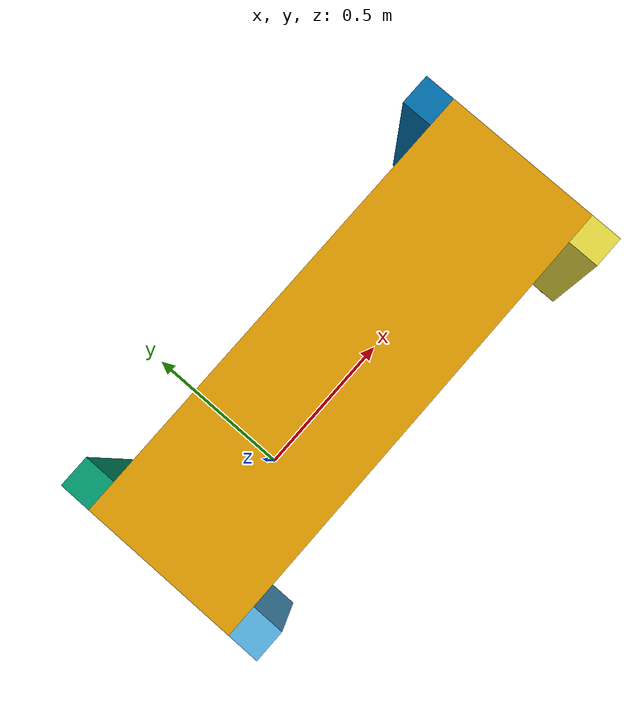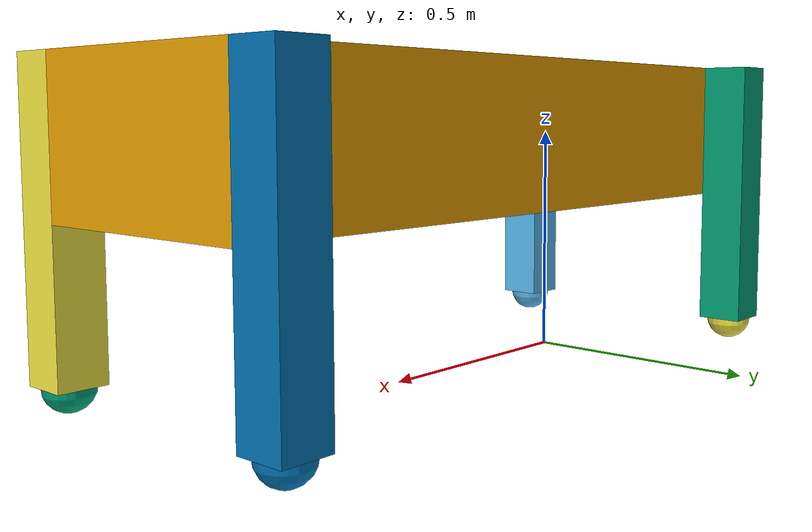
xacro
<?xml version="1.0" ?>

<robot name="pig_dog" xmlns:xacro="http://www.ros.org/wiki/xacro">

  <!-- Import all Gazebo-customization elements, including Gazebo colors -->
  <xacro:include filename="$(find pig_dog_description)/urdf/pig_dog.gazebo" />

  <joint name="body_lf_joint" type="continuous">
    <parent link="body"/>
    <child link="left_front_leg"/>
    <origin rpy="0 0 0" xyz="-0.35 -0.3   0.65"/>
    <axis xyz="0 1 0"/>
    <dynamics damping="0.7"/>
  </joint>

  <joint name="body_rf_joint" type="continuous">
    <parent link="body"/>
    <child link="right_front_leg"/>
    <origin rpy="0 0 0" xyz="-0.35  0.3   0.65"/>
    <axis xyz="0 -1  0"/>
    <dynamics damping="0.7"/>
  </joint>

  <joint name="body_lb_joint" type="continuous">
    <parent link="body"/>
    <child link="left_back_leg"/>
    <origin rpy="0 0 0" xyz="1.05 -0.3   0.65"/>
    <axis xyz="0 1 0"/>
    <dynamics damping="0.7"/>
  </joint>

  <joint name="body_rb_joint" type="continuous">
    <parent link="body"/>
    <child link="right_back_leg"/>
    <origin rpy="0 0 0" xyz="1.05 0.3  0.65"/>
    <axis xyz="0 -1  0"/>
    <dynamics damping="0.7"/>
  </joint>

  <joint name="lf_leg_foot_joint" type="prismatic">
    <parent link="left_front_leg"/>
    <child link="left_front_foot"/>
    <origin rpy="0 0 0" xyz="0   0  -0.6"/>
    <axis xyz="0  0 -1"/>
    <limit effort="1e10" lower="0" upper="0.5" velocity="10"/>
  </joint>

  <joint name="rf_leg_foot_joint" type="prismatic">
    <parent link="right_front_leg"/>
    <child link="right_front_foot"/>
    <origin rpy="0 0 0" xyz="0   0  -0.6"/>
    <axis xyz="0  0 -1"/>
    <limit effort="1e10" lower="0" upper="0.5" velocity="10"/>
  </joint>

  <joint name="lb_leg_foot_joint" type="prismatic">
    <parent link="left_back_leg"/>
    <child link="left_back_foot"/>
    <origin rpy="0 0 0" xyz="0   0  -0.6"/>
    <axis xyz="0  0 -1"/>
    <limit effort="1e10" lower="0" upper="0.5" velocity="10"/>
  </joint>

  <joint name="rb_leg_foot_joint" type="prismatic">
    <parent link="right_back_leg"/>
    <child link="right_back_foot"/>
    <origin rpy="0 0 0" xyz="0   0  -0.6"/>
    <axis xyz="0  0 -1"/>
    <limit effort="1e10" lower="0" upper="0.5" velocity="10"/>
  </joint>

  <joint name="lf_foot_shoe_joint" type="fixed">
    <parent link="left_front_foot"/>
    <child link="left_front_shoe"/>
    <origin rpy="0 0 0" xyz="0   0  0"/>
    <axis xyz="0 0 1"/>
  </joint>

  <joint name="rf_foot_shoe_joint" type="fixed">
    <parent link="right_front_foot"/>
    <child link="right_front_shoe"/>
    <origin rpy="0 0 0" xyz="0   0  0"/>
    <axis xyz="0 0 1"/>
  </joint>

  <joint name="lb_foot_shoe_joint" type="fixed">
    <parent link="left_back_foot"/>
    <child link="left_back_shoe"/>
    <origin rpy="0 0 0" xyz="0  0  0"/>
    <axis xyz="0 0 1"/>
  </joint>

  <joint name="rb_foot_shoe_joint" type="fixed">
    <parent link="right_back_foot"/>
    <child link="right_back_shoe"/>
    <origin rpy="0 0 0" xyz="0   0  0"/>
    <axis xyz="0 0 1"/>
  </joint>

  <link name="body">
    <inertial>
      <mass value="5"/>
      <origin rpy="0 0 0" xyz="0 0 0"/>
      <inertia ixx="0.166667" ixy="0" ixz="0" iyy="0.166667" iyz="0" izz="0.166667"/>
    </inertial>
    <collision name="pig_dog__collision">
      <origin rpy="0 0 0" xyz="0.35 0   0.5"/>
      <geometry>
        <box size="1.5 0.5 0.3"/>
      </geometry>
    </collision>
    <visual name="pig_dog__visual">
      <origin rpy="0 0 0" xyz="0.35 0   0.5"/>
      <geometry>
        <box size="1.5 0.5 0.3"/>
      </geometry>
    </visual>
  </link>

  <link name="left_front_leg">
    <inertial>
      <mass value="0.5"/>
      <origin rpy="0 0 0" xyz="0 0 0"/>
      <inertia ixx="0.166667" ixy="0" ixz="0" iyy="0.166667" iyz="0" izz="0.166667"/>
    </inertial>
    <collision name="pig_dog__collision">
      <origin rpy="0 0 0" xyz="0   0  -0.3"/>
      <geometry>
        <box size="0.1 0.1 0.6"/>
      </geometry>
    </collision>
    <visual name="pig_dog__visual">
      <origin rpy="0 0 0" xyz="0   0  -0.3"/>
      <geometry>
        <box size="0.1 0.1 0.6"/>
      </geometry>
    </visual>
  </link>
  <link name="right_front_leg">
    <inertial>
      <mass value="0.5"/>
      <origin rpy="0 0 0" xyz="0 0 0"/>
      <inertia ixx="0.166667" ixy="0" ixz="0" iyy="0.166667" iyz="0" izz="0.166667"/>
    </inertial>
    <collision name="pig_dog__collision">
      <origin rpy="0 0 0" xyz="0   0  -0.3"/>
      <geometry>
        <box size="0.1 0.1 0.6"/>
      </geometry>
    </collision>
    <visual name="pig_dog__visual">
      <origin rpy="0 0 0" xyz="0   0  -0.3"/>
      <geometry>
        <box size="0.1 0.1 0.6"/>
      </geometry>
    </visual>
  </link>
  <link name="left_back_leg">
    <inertial>
      <mass value="0.5"/>
      <origin rpy="0 0 0" xyz="0 0 0"/>
      <inertia ixx="0.166667" ixy="0" ixz="0" iyy="0.166667" iyz="0" izz="0.166667"/>
    </inertial>
    <collision name="pig_dog__collision">
      <origin rpy="0 0 0" xyz="0   0  -0.3"/>
      <geometry>
        <box size="0.1 0.1 0.6"/>
      </geometry>
    </collision>
    <visual name="pig_dog__visual">
      <origin rpy="0 0 0" xyz="0   0  -0.3"/>
      <geometry>
        <box size="0.1 0.1 0.6"/>
      </geometry>
    </visual>
  </link>
  <link name="right_back_leg">
    <inertial>
      <mass value="0.5"/>
      <origin rpy="0 0 0" xyz="0 0 0"/>
      <inertia ixx="0.166667" ixy="0" ixz="0" iyy="0.166667" iyz="0" izz="0.166667"/>
    </inertial>
    <collision name="pig_dog__collision">
      <origin rpy="0 0 0" xyz="0   0  -0.3"/>
      <geometry>
        <box size="0.1 0.1 0.6"/>
      </geometry>
    </collision>
    <visual name="pig_dog__visual">
      <origin rpy="0 0 0" xyz="0   0  -0.3"/>
      <geometry>
        <box size="0.1 0.1 0.6"/>
      </geometry>
    </visual>
  </link>
  <link name="left_front_foot">
    <inertial>
      <mass value="0.2"/>
      <origin rpy="0 0 0" xyz="0 0 0"/>
      <inertia ixx="0.145833" ixy="0" ixz="0" iyy="0.145833" iyz="0" izz="0.125"/>
    </inertial>
    <collision name="pig_dog__collision">
      <origin rpy="0 0 0" xyz="0   0   0.25"/>
      <geometry>
        <cylinder length="0.5" radius="0.025"/>
      </geometry>
    </collision>
    <visual name="pig_dog__visual">
      <origin rpy="0 0 0" xyz="0   0   0.25"/>
      <geometry>
        <cylinder length="0.5" radius="0.025"/>
      </geometry>
    </visual>
  </link>
  <link name="right_front_foot">
    <inertial>
      <mass value="0.2"/>
      <origin rpy="0 0 0" xyz="0 0 0"/>
      <inertia ixx="0.145833" ixy="0" ixz="0" iyy="0.145833" iyz="0" izz="0.125"/>
    </inertial>
    <collision name="pig_dog__collision">
      <origin rpy="0 0 0" xyz="0   0   0.25"/>
      <geometry>
        <cylinder length="0.5" radius="0.025"/>
      </geometry>
    </collision>
    <visual name="pig_dog__visual">
      <origin rpy="0 0 0" xyz="0   0   0.25"/>
      <geometry>
        <cylinder length="0.5" radius="0.025"/>
      </geometry>
    </visual>
  </link>
  <link name="left_back_foot">
    <inertial>
      <mass value="0.2"/>
      <origin rpy="0 0 0" xyz="0 0 0"/>
      <inertia ixx="0.145833" ixy="0" ixz="0" iyy="0.145833" iyz="0" izz="0.125"/>
    </inertial>
    <collision name="pig_dog__collision">
      <origin rpy="0 0 0" xyz="0   0   0.25"/>
      <geometry>
        <cylinder length="0.5" radius="0.025"/>
      </geometry>
    </collision>
    <visual name="pig_dog__visual">
      <origin rpy="0 0 0" xyz="0   0   0.25"/>
      <geometry>
        <cylinder length="0.5" radius="0.025"/>
      </geometry>
    </visual>
  </link>
  <link name="right_back_foot">
    <inertial>
      <mass value="0.2"/>
      <origin rpy="0 0 0" xyz="0 0 0"/>
      <inertia ixx="0.145833" ixy="0" ixz="0" iyy="0.145833" iyz="0" izz="0.125"/>
    </inertial>
    <collision name="pig_dog__collision">
      <origin rpy="0 0 0" xyz="0   0   0.25"/>
      <geometry>
        <cylinder length="0.5" radius="0.025"/>
      </geometry>
    </collision>
    <visual name="pig_dog__visual">
      <origin rpy="0 0 0" xyz="0   0   0.25"/>
      <geometry>
        <cylinder length="0.5" radius="0.025"/>
      </geometry>
    </visual>
  </link>

  <link name="left_front_shoe">
    <inertial>
      <mass value="0.1"/>
      <origin rpy="0 0 0" xyz="0 0 0"/>
      <inertia ixx="0.1" ixy="0" ixz="0" iyy="0.1" iyz="0" izz="0.1"/>
    </inertial>
    <collision name="pig_dog__collision">
      <origin rpy="0 0 0" xyz="0   0   0"/>
      <geometry>
        <sphere radius="0.05"/>
      </geometry>
    </collision>
    <visual name="pig_dog__visual">
      <origin rpy="0 0 0" xyz="0   0   0"/>
      <geometry>
        <sphere radius="0.05"/>
      </geometry>
    </visual>
  </link>

  <link name="left_back_shoe">
    <inertial>
      <mass value="0.1"/>
      <origin rpy="0 0 0" xyz="0 0 0"/>
      <inertia ixx="0.1" ixy="0" ixz="0" iyy="0.1" iyz="0" izz="0.1"/>
    </inertial>
    <collision name="pig_dog__collision">
      <origin rpy="0 0 0" xyz="0   0   0"/>
      <geometry>
        <sphere radius="0.05"/>
      </geometry>
    </collision>
    <visual name="pig_dog__visual">
      <origin rpy="0 0 0" xyz="0   0   0"/>
      <geometry>
        <sphere radius="0.05"/>
      </geometry>
    </visual>
  </link>

  <link name="right_front_shoe">
    <inertial>
      <mass value="0.1"/>
      <origin rpy="0 0 0" xyz="0 0 0"/>
      <inertia ixx="0.1" ixy="0" ixz="0" iyy="0.1" iyz="0" izz="0.1"/>
    </inertial>
    <collision name="pig_dog__collision">
      <origin rpy="0 0 0" xyz="0   0   0"/>
      <geometry>
        <sphere radius="0.05"/>
      </geometry>
    </collision>
    <visual name="pig_dog__visual">
      <origin rpy="0 0 0" xyz="0   0   0"/>
      <geometry>
        <sphere radius="0.05"/>
      </geometry>
    </visual>
  </link>

  <link name="right_back_shoe">
    <inertial>
      <mass value="0.1"/>
      <origin rpy="0 0 0" xyz="0 0 0"/>
      <inertia ixx="0.1" ixy="0" ixz="0" iyy="0.1" iyz="0" izz="0.1"/>
    </inertial>
    <collision name="pig_dog__collision">
      <origin rpy="0 0 0" xyz="0   0   0"/>
      <geometry>
        <sphere radius="0.05"/>
      </geometry>
    </collision>
    <visual name="pig_dog__visual">
      <origin rpy="0 0 0" xyz="0   0   0"/>
      <geometry>
        <sphere radius="0.05"/>
      </geometry>
    </visual>
  </link>

  <transmission name="lf_rot_trans">
    <type>transmission_interface/SimpleTransmission</type>
    <joint name="body_lf_joint">
      <hardwareInterface>hardware_interface/PositionJointInterface</hardwareInterface>
    </joint>
    <actuator name="lf_rot_motor">
      <hardwareInterface>hardware_interface/PositionJointInterface</hardwareInterface>
      <mechanicalReduction>1</mechanicalReduction>
    </actuator>
  </transmission>

  <transmission name="rf_rot_trans">
    <type>transmission_interface/SimpleTransmission</type>
    <joint name="body_rf_joint">
      <hardwareInterface>hardware_interface/PositionJointInterface</hardwareInterface>
    </joint>
    <actuator name="rf_rot_motor">
      <hardwareInterface>hardware_interface/PositionJointInterface</hardwareInterface>
      <mechanicalReduction>1</mechanicalReduction>
    </actuator>
  </transmission>

  <transmission name="lb_rot_trans">
    <type>transmission_interface/SimpleTransmission</type>
    <joint name="body_lb_joint">
      <hardwareInterface>hardware_interface/PositionJointInterface</hardwareInterface>
    </joint>
    <actuator name="lb_rot_motor">
      <hardwareInterface>hardware_interface/PositionJointInterface</hardwareInterface>
      <mechanicalReduction>1</mechanicalReduction>
    </actuator>
  </transmission>

  <transmission name="rb_rot_trans">
    <type>transmission_interface/SimpleTransmission</type>
    <joint name="body_rb_joint">
      <hardwareInterface>hardware_interface/PositionJointInterface</hardwareInterface>
    </joint>
    <actuator name="rb_rot_motor">
      <hardwareInterface>hardware_interface/PositionJointInterface</hardwareInterface>
      <mechanicalReduction>1</mechanicalReduction>
    </actuator>
  </transmission>

  <transmission name="lf_linear_trans">
    <type>transmission_interface/SimpleTransmission</type>
    <joint name="lf_leg_foot_joint">
      <hardwareInterface>hardware_interface/PositionJointInterface</hardwareInterface>
    </joint>
    <actuator name="lf_linear_motor">
      <hardwareInterface>hardware_interface/PositionJointInterface</hardwareInterface>
      <mechanicalReduction> 1 </mechanicalReduction>
    </actuator>
  </transmission>

  <transmission name="rf_linear_trans">
    <type>transmission_interface/SimpleTransmission</type>
    <joint name="rf_leg_foot_joint">
      <hardwareInterface>hardware_interface/PositionJointInterface</hardwareInterface>
    </joint>
    <actuator name="rf_linear_motor">
      <hardwareInterface>hardware_interface/PositionJointInterface</hardwareInterface>
      <mechanicalReduction> 1 </mechanicalReduction>
    </actuator>
  </transmission>

  <transmission name="lb_linear_trans">
    <type>transmission_interface/SimpleTransmission</type>
    <joint name="lb_leg_foot_joint">
      <hardwareInterface>hardware_interface/PositionJointInterface</hardwareInterface>
    </joint>
    <actuator name="lb_linear_motor">
      <hardwareInterface>hardware_interface/PositionJointInterface</hardwareInterface>
      <mechanicalReduction> 1 </mechanicalReduction>
    </actuator>
  </transmission>

  <transmission name="rb_linear_trans">
    <type>transmission_interface/SimpleTransmission</type>
    <joint name="rb_leg_foot_joint">
      <hardwareInterface>hardware_interface/PositionJointInterface</hardwareInterface>
    </joint>
    <actuator name="rb_linear_motor">
      <hardwareInterface>hardware_interface/PositionJointInterface</hardwareInterface>
      <mechanicalReduction> 1 </mechanicalReduction>
    </actuator>
  </transmission>

</robot>
